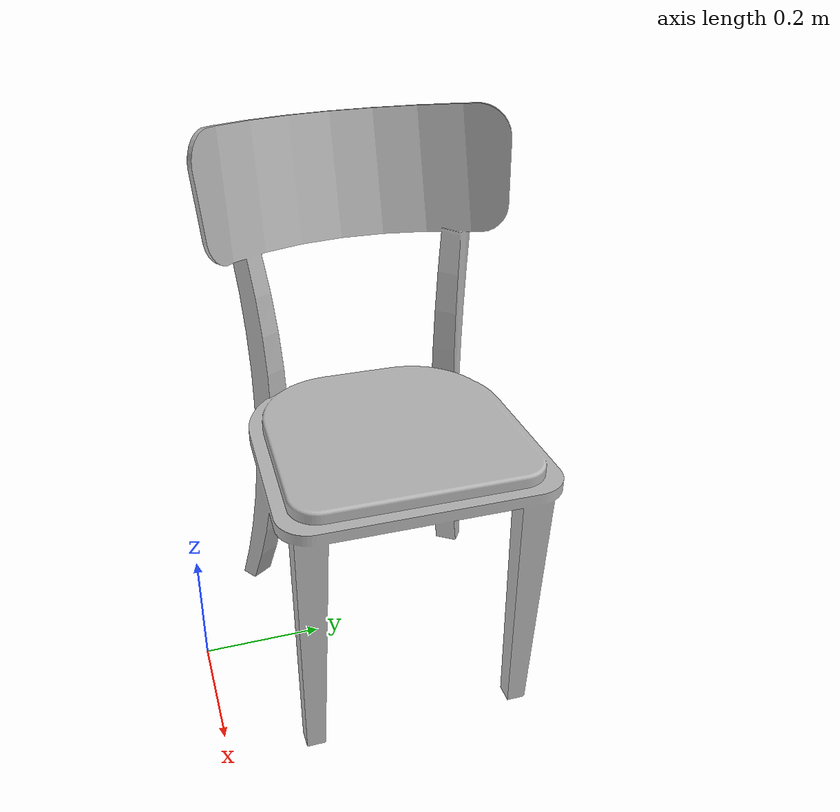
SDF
<?xml version="1.0" ?>
<sdf version="1.6">
  <model name="ramen_chair">
    <static>true</static>
     <link name="link">
      <visual name="ramen_chair_visual">
        <geometry>
          <mesh>
            <uri>model://ramen_chair/meshes/ramen_chair.obj</uri>
          </mesh>
        </geometry>
      </visual>
      <collision name="ramen_chair_collision">
        <geometry>
          <mesh>
            <uri>model://ramen_chair/meshes/ramen_chair.obj</uri>
          </mesh>
        </geometry>
      </collision>

    </link>
  </model>

</sdf>
